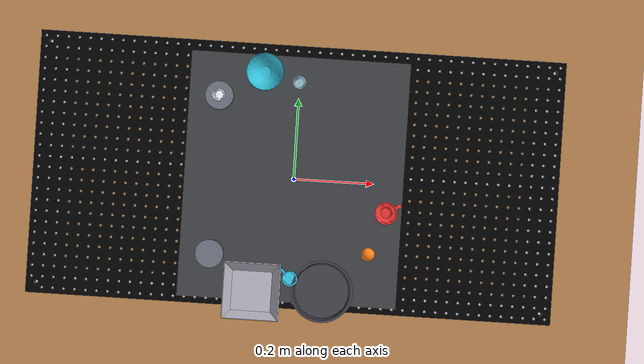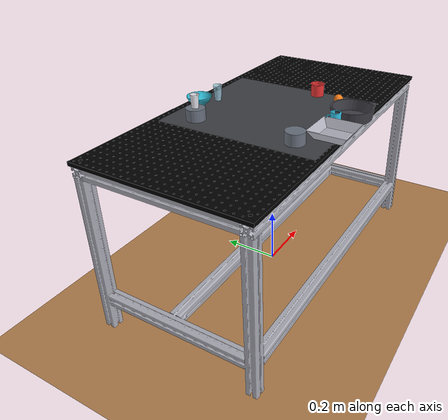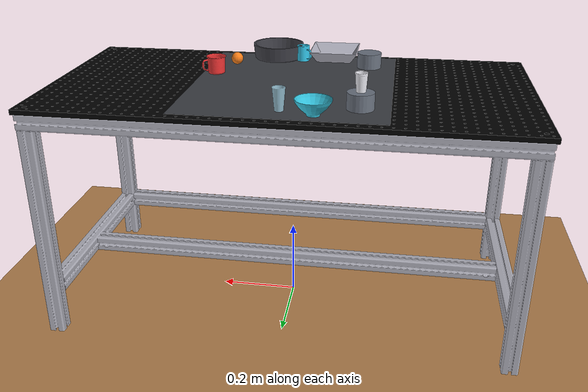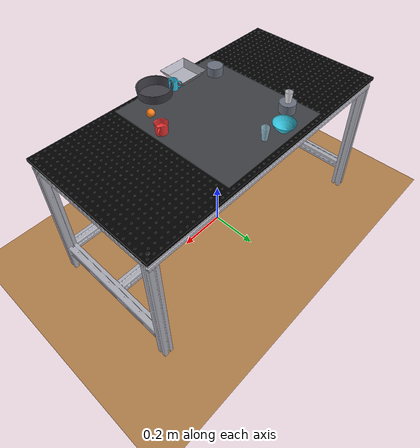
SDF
<sdf version="1.6">
 <world name="default">
  <physics type="ode">
   <max_step_size>0.001</max_step_size>
   <real_time_factor>1.0</real_time_factor>
   <real_time_update_rate>1000</real_time_update_rate>
   <ode>
    <solver><type>quick</type><iters>100</iters><sor>1.3</sor></solver>
    <constraints>
     <cfm>0.00001</cfm>
     <erp>0.2</erp>
     <contact_max_correcting_vel>10.0</contact_max_correcting_vel>
     <contact_surface_layer>0.001</contact_surface_layer>
    </constraints>
   </ode>
  </physics>
  <plugin name="gazebo_ros_state" filename="libgazebo_ros_state.so">
   <ros><namespace>/gazebo</namespace></ros>
   <update_rate>50.0</update_rate>
  </plugin>
  <gravity>0 0 -9.81</gravity>
  <scene>
   <ambient>0.70 0.70 0.72 1.0</ambient>
   <background>0.84 0.86 0.90 1.0</background>
   <shadows>true</shadows>
   <grid>false</grid>
  </scene>
  <light type="directional" name="sun">
   <pose>0.5 0.5 5.0 0 0 0</pose>
   <diffuse>0.92 0.92 0.90 1</diffuse>
   <specular>0.3 0.3 0.3 1</specular>
   <direction>-0.3 -0.3 -1.0</direction>
  </light>
  <light type="spot" name="table_spot">
   <pose>0.0 0.0 2.2 0 0 0</pose>
   <diffuse>0.92 0.90 0.85 1</diffuse>
   <specular>0.4 0.4 0.4 1</specular>
   <attenuation>
    <range>4.5</range>
    <constant>0.4</constant>
    <linear>0.05</linear>
    <quadratic>0.01</quadratic>
   </attenuation>
   <direction>0 0 -1</direction>
   <spot><inner_angle>1.2</inner_angle><outer_angle>1.8</outer_angle><falloff>1.0</falloff></spot>
   <cast_shadows>false</cast_shadows>
  </light>
  <light type="point" name="workspace_fill_light">
   <pose>0.0 0.0 1.8 0 0 0</pose>
   <diffuse>0.48 0.48 0.50 1</diffuse>
   <specular>0.1 0.1 0.1 1</specular>
   <attenuation>
    <range>3.5</range>
    <constant>0.6</constant>
    <linear>0.06</linear>
    <quadratic>0.01</quadratic>
   </attenuation>
   <cast_shadows>false</cast_shadows>
  </light>
  <model name="overhead_camera_model">
   <static>true</static>
   <pose>0.0 0.0 1.45 0 1.5708 0</pose>
   <link name="camera_link">
    <sensor name="top_camera" type="camera">
     <always_on>true</always_on>
     <update_rate>30</update_rate>
     <visualize>false</visualize>
     <camera>
      <horizontal_fov>1.25</horizontal_fov>
      <image><width>1920</width><height>1080</height><format>R8G8B8</format></image>
      <clip><near>0.01</near><far>10.0</far></clip>
     </camera>
     <plugin name="overhead_camera_driver" filename="libgazebo_ros_camera.so">
      <ros>
       <remapping>~/image_raw:=/top_camera/image_raw</remapping>
       <remapping>~/camera_info:=/top_camera/camera_info</remapping>
      </ros>
      <camera_name>top_camera</camera_name>
      <frame_name>top_camera_link</frame_name>
     </plugin>
    </sensor>
   </link>
  </model>
  <model name="side_inspection_rig">
   <static>true</static>
   <pose>0.52 -0.42 0.95 0 0.40 2.45</pose>
   <link name="link">
    <sensor name="side_camera" type="camera">
     <always_on>true</always_on>
     <update_rate>30</update_rate>
     <visualize>false</visualize>
     <camera>
      <horizontal_fov>1.15</horizontal_fov>
      <image><width>1920</width><height>1080</height><format>R8G8B8</format></image>
      <clip><near>0.01</near><far>10.0</far></clip>
     </camera>
     <plugin name="side_camera_driver" filename="libgazebo_ros_camera.so">
      <ros>
       <remapping>~/image_raw:=/side_camera/image_raw</remapping>
       <remapping>~/camera_info:=/side_camera/camera_info</remapping>
      </ros>
      <camera_name>side_camera</camera_name>
      <frame_name>side_camera_link</frame_name>
     </plugin>
    </sensor>
   </link>
  </model>
  <model name="ground_plane">
   <static>true</static>
   <link name="link">
    <collision name="collision">
     <geometry><plane><normal>0 0 1</normal><size>20 20</size></plane></geometry>
     <surface>
      <friction><ode><mu>100</mu><mu2>50</mu2></ode></friction>
      <bounce><restitution_coefficient>0.0</restitution_coefficient><threshold>1000000.0</threshold></bounce>
     </surface>
    </collision>
    <visual name="visual">
     <cast_shadows>false</cast_shadows>
     <geometry><plane><normal>0 0 1</normal><size>20 20</size></plane></geometry>
     <material>
      <script><uri>file://media/materials/scripts/gazebo.material</uri><name>Gazebo/WoodFloor</name></script>
     </material>
    </visual>
   </link>
  </model>
  <model name="optical_table">
   <static>true</static>
   <pose>0.60 0.30 0 0 0 0</pose>
   <link name="link">
    <collision name="collision">
     <pose>-0.60 -0.30 0.304 0 0 0</pose>
     <geometry><box><size>1.20 0.60 0.608</size></box></geometry>
     <surface>
      <friction><ode><mu>1.2</mu><mu2>1.2</mu2></ode></friction>
      <friction><ode><mu>1.5</mu><mu2>1.5</mu2><slip1>0.0</slip1><slip2>0.0</slip2></ode></friction>
      <contact>
       <ode><kp>1000000.0</kp><kd>1000.0</kd><max_vel>0.01</max_vel><min_depth>0.001</min_depth></ode>
      </contact>
      <bounce><restitution_coefficient>0.0</restitution_coefficient><threshold>1000000.0</threshold></bounce>
     </surface>
    </collision>
    <visual name="visual">
     <geometry>
      <mesh>
       <uri>file:///home/gaminizer/Projects/ARIA/install/arm_description/share/arm_description/meshes/table/complete_table.dae</uri>
      </mesh>
     </geometry>
    </visual>
   </link>
  </model>
  <model name="workspace_calibration_mat">
   <static>true</static>
   <pose>0.0 0.0 0.6081 0 0 0</pose>
   <link name="mat_link">
    <visual name="mat_visual">
     <geometry><box><size>0.50 0.56 0.0002</size></box></geometry>
     <material>
      <ambient>0.20 0.21 0.23 1</ambient>
      <diffuse>0.24 0.25 0.27 1</diffuse>
      <specular>0.1 0.1 0.1 1</specular>
     </material>
    </visual>
   </link>
  </model>
  <model name="elevated_pedestal_left">
   <static>true</static>
   <pose>-0.18 0.18 0.6281 0 0 0</pose>
   <link name="pedestal_link">
    <collision name="c">
     <geometry><cylinder><radius>0.032</radius><length>0.040</length></cylinder></geometry>
     <surface>
      <friction><ode><mu>1.2</mu><mu2>1.2</mu2></ode></friction>
      <contact><ode><kp>100000.0</kp><kd>100.0</kd><min_depth>0.001</min_depth></ode></contact>
      <bounce><restitution_coefficient>0.0</restitution_coefficient><threshold>1000000.0</threshold></bounce>
     </surface>
    </collision>
    <visual name="v">
     <geometry><cylinder><radius>0.032</radius><length>0.040</length></cylinder></geometry>
     <material>
      <ambient>0.35 0.38 0.42 1</ambient>
      <diffuse>0.42 0.45 0.50 1</diffuse>
      <specular>0.5 0.5 0.5 1</specular>
     </material>
    </visual>
   </link>
  </model>
  <model name="elevated_pedestal_right">
   <static>true</static>
   <pose>-0.18 -0.18 0.6281 0 0 0</pose>
   <link name="pedestal_link">
    <collision name="c">
     <geometry><cylinder><radius>0.032</radius><length>0.040</length></cylinder></geometry>
     <surface>
      <friction><ode><mu>1.2</mu><mu2>1.2</mu2></ode></friction>
      <contact><ode><kp>100000.0</kp><kd>100.0</kd><min_depth>0.001</min_depth></ode></contact>
      <bounce><restitution_coefficient>0.0</restitution_coefficient><threshold>1000000.0</threshold></bounce>
     </surface>
    </collision>
    <visual name="v">
     <geometry><cylinder><radius>0.032</radius><length>0.040</length></cylinder></geometry>
     <material>
      <ambient>0.35 0.38 0.42 1</ambient>
      <diffuse>0.42 0.45 0.50 1</diffuse>
      <specular>0.5 0.5 0.5 1</specular>
     </material>
    </visual>
   </link>
  </model>
  <model name="mug_ycb_front">
   <pose>0.22 -0.06 0.6081 0 0 0.6</pose>
   <link name="body">
    <inertial>
     <pose>0 0 0.0225 0 0 0</pose>
     <mass>0.22</mass>
     <inertia><ixx>0.0002</ixx><ixy>0</ixy><ixz>0</ixz><iyy>0.0002</iyy><iyz>0</iyz><izz>0.0002</izz></inertia>
    </inertial>
    <collision name="c">
     <pose>0 0 0.0225 0 0 0</pose>
     <geometry><cylinder><radius>0.018</radius><length>0.045</length></cylinder></geometry>
     <surface>
      <friction><ode><mu>1.2</mu><mu2>1.2</mu2></ode></friction>
      <contact>
       <ode><kp>50000.0</kp><kd>100.0</kd><max_vel>0.01</max_vel><min_depth>0.002</min_depth></ode>
      </contact>
      <bounce><restitution_coefficient>0.0</restitution_coefficient><threshold>1000000.0</threshold></bounce>
     </surface>
    </collision>
    <visual name="v">
     <geometry>
      <mesh>
       <uri>file:///home/gaminizer/Projects/ARIA/install/arm_description/share/arm_description/meshes/objects/ycb_mug/ycb_mug_norm.obj</uri>
      </mesh>
     </geometry>
     <material>
      <ambient>0.85 0.15 0.15 1</ambient>
      <diffuse>0.92 0.20 0.20 1</diffuse>
      <specular>0.6 0.6 0.6 1</specular>
     </material>
    </visual>
   </link>
  </model>
  <model name="plastic_glass">
   <pose>0.00 0.22 0.6081 0 0 0</pose>
   <link name="body">
    <inertial>
     <pose>0 0 0.0275 0 0 0</pose>
     <mass>0.15</mass>
     <inertia><ixx>0.00018</ixx><ixy>0</ixy><ixz>0</ixz><iyy>0.00018</iyy><iyz>0</iyz><izz>0.0001</izz></inertia>
    </inertial>
    <collision name="c">
     <pose>0 0 0.0275 0 0 0</pose>
     <geometry><cylinder><radius>0.016</radius><length>0.055</length></cylinder></geometry>
     <surface>
      <friction><ode><mu>1.2</mu><mu2>1.2</mu2></ode></friction>
      <contact>
       <ode><kp>50000.0</kp><kd>100.0</kd><max_vel>0.01</max_vel><min_depth>0.002</min_depth></ode>
      </contact>
      <bounce><restitution_coefficient>0.0</restitution_coefficient><threshold>1000000.0</threshold></bounce>
     </surface>
    </collision>
    <visual name="v">
     <geometry>
      <mesh>
       <uri>file:///home/gaminizer/Projects/ARIA/install/arm_description/share/arm_description/meshes/objects/plastic_glass_norm.obj</uri>
      </mesh>
     </geometry>
     <material>
      <ambient>0.6 0.85 0.95 0.8</ambient>
      <diffuse>0.7 0.90 0.98 0.8</diffuse>
      <specular>0.9 0.9 0.9 1</specular>
     </material>
    </visual>
   </link>
  </model>
  <model name="plastic_bowl">
   <pose>-0.08 0.24 0.6081 0 0 0</pose>
   <link name="body">
    <inertial>
     <pose>0 0 0.0190 0 0 0</pose>
     <mass>0.18</mass>
     <inertia><ixx>0.00025</ixx><ixy>0</ixy><ixz>0</ixz><iyy>0.00025</iyy><iyz>0</iyz><izz>0.0003</izz></inertia>
    </inertial>
    <collision name="c">
     <pose>0 0 0.019 0 0 0</pose>
     <geometry><cylinder><radius>0.050</radius><length>0.038</length></cylinder></geometry>
     <surface>
      <friction><ode><mu>1.2</mu><mu2>1.2</mu2></ode></friction>
      <contact>
       <ode><kp>50000.0</kp><kd>100.0</kd><max_vel>0.01</max_vel><min_depth>0.002</min_depth></ode>
      </contact>
      <bounce><restitution_coefficient>0.0</restitution_coefficient><threshold>1000000.0</threshold></bounce>
     </surface>
    </collision>
    <visual name="v">
     <geometry>
      <mesh>
       <uri>file:///home/gaminizer/Projects/ARIA/install/arm_description/share/arm_description/meshes/objects/plastic_bowl_norm.obj</uri>
      </mesh>
     </geometry>
     <material>
      <ambient>0.15 0.65 0.75 1</ambient>
      <diffuse>0.20 0.75 0.85 1</diffuse>
      <specular>0.5 0.5 0.5 1</specular>
     </material>
    </visual>
   </link>
  </model>
  <model name="ceramic_tea_mug">
   <pose>-0.18 0.18 0.6481 0 0 -1.5708</pose>
   <link name="body">
    <inertial>
     <pose>0 0 0.0210 0 0 0</pose>
     <mass>0.24</mass>
     <inertia><ixx>0.00025</ixx><ixy>0</ixy><ixz>0</ixz><iyy>0.00025</iyy><iyz>0</iyz><izz>0.00025</izz></inertia>
    </inertial>
    <collision name="c">
     <pose>0 0 0.0225 0 0 0</pose>
     <geometry><cylinder><radius>0.016</radius><length>0.045</length></cylinder></geometry>
     <surface>
      <friction><ode><mu>1.2</mu><mu2>1.2</mu2></ode></friction>
      <contact>
       <ode><kp>50000.0</kp><kd>100.0</kd><max_vel>0.01</max_vel><min_depth>0.002</min_depth></ode>
      </contact>
      <bounce><restitution_coefficient>0.0</restitution_coefficient><threshold>1000000.0</threshold></bounce>
     </surface>
    </collision>
    <visual name="v">
     <geometry>
      <mesh>
       <uri>file:///home/gaminizer/Projects/ARIA/install/arm_description/share/arm_description/meshes/bullet/tea_mug_norm.obj</uri>
      </mesh>
     </geometry>
     <material>
      <ambient>0.88 0.88 0.90 1</ambient>
      <diffuse>0.92 0.92 0.95 1</diffuse>
      <specular>0.7 0.7 0.7 1</specular>
     </material>
    </visual>
   </link>
  </model>
  <model name="tefal_pan">
   <pose>0.08 -0.25 0.6081 0 0 -0.5</pose>
   <link name="body">
    <inertial>
     <pose>0 0 0.0175 0 0 0</pose>
     <mass>0.35</mass>
     <inertia><ixx>0.0005</ixx><ixy>0</ixy><ixz>0</ixz><iyy>0.0005</iyy><iyz>0</iyz><izz>0.0008</izz></inertia>
    </inertial>
    <collision name="c">
     <pose>0 0 0.020 0 0 0</pose>
     <geometry><cylinder><radius>0.075</radius><length>0.040</length></cylinder></geometry>
     <surface>
      <friction><ode><mu>1.2</mu><mu2>1.2</mu2></ode></friction>
      <contact>
       <ode><kp>50000.0</kp><kd>100.0</kd><max_vel>0.01</max_vel><min_depth>0.002</min_depth></ode>
      </contact>
      <bounce><restitution_coefficient>0.0</restitution_coefficient><threshold>1000000.0</threshold></bounce>
     </surface>
    </collision>
    <visual name="v">
     <geometry>
      <mesh>
       <uri>file:///home/gaminizer/Projects/ARIA/install/arm_description/share/arm_description/meshes/bullet/pan_tefal_norm.obj</uri>
      </mesh>
     </geometry>
     <material>
      <ambient>0.2 0.2 0.22 1</ambient>
      <diffuse>0.25 0.25 0.28 1</diffuse>
      <specular>0.5 0.5 0.5 1</specular>
     </material>
    </visual>
   </link>
  </model>
  <model name="mug_bullet_right">
   <pose>0.00 -0.22 0.6081 0 0 0.8</pose>
   <link name="body">
    <inertial>
     <pose>0 0 0.0210 0 0 0</pose>
     <mass>0.25</mass>
     <inertia><ixx>0.00025</ixx><ixy>0</ixy><ixz>0</ixz><iyy>0.00025</iyy><iyz>0</iyz><izz>0.00025</izz></inertia>
    </inertial>
    <collision name="c">
     <pose>0 0 0.021 0 0 0</pose>
     <geometry><cylinder><radius>0.018</radius><length>0.042</length></cylinder></geometry>
     <surface>
      <friction><ode><mu>1.2</mu><mu2>1.2</mu2></ode></friction>
      <contact>
       <ode><kp>50000.0</kp><kd>100.0</kd><max_vel>0.01</max_vel><min_depth>0.002</min_depth></ode>
      </contact>
      <bounce><restitution_coefficient>0.0</restitution_coefficient><threshold>1000000.0</threshold></bounce>
     </surface>
    </collision>
    <visual name="v">
     <geometry>
      <mesh>
       <uri>file:///home/gaminizer/Projects/ARIA/install/arm_description/share/arm_description/meshes/bullet/bullet_mug_norm.obj</uri>
      </mesh>
     </geometry>
     <material>
      <ambient>0.15 0.70 0.85 1</ambient>
      <diffuse>0.20 0.78 0.92 1</diffuse>
      <specular>0.5 0.5 0.5 1</specular>
     </material>
    </visual>
   </link>
  </model>
  <model name="sorting_tray">
   <pose>-0.08 -0.26 0.6081 0 0 0</pose>
   <link name="body">
    <inertial>
     <pose>0 0 0.0175 0 0 0</pose>
     <mass>0.28</mass>
     <inertia><ixx>0.0004</ixx><ixy>0</ixy><ixz>0</ixz><iyy>0.0004</iyy><iyz>0</iyz><izz>0.0006</izz></inertia>
    </inertial>
    <collision name="c">
     <pose>0 0 0.015 0 0 0</pose>
     <geometry><box><size>0.15 0.15 0.030</size></box></geometry>
     <surface>
      <friction><ode><mu>1.2</mu><mu2>1.2</mu2></ode></friction>
      <contact>
       <ode><kp>50000.0</kp><kd>100.0</kd><max_vel>0.01</max_vel><min_depth>0.002</min_depth></ode>
      </contact>
      <bounce><restitution_coefficient>0.0</restitution_coefficient><threshold>1000000.0</threshold></bounce>
     </surface>
    </collision>
    <visual name="v">
     <geometry>
      <mesh>
       <uri>file:///home/gaminizer/Projects/ARIA/install/arm_description/share/arm_description/meshes/bullet/tray_norm.obj</uri>
      </mesh>
     </geometry>
     <material>
      <ambient>0.6 0.6 0.65 1</ambient>
      <diffuse>0.7 0.7 0.75 1</diffuse>
      <specular>0.4 0.4 0.4 1</specular>
     </material>
    </visual>
   </link>
  </model>
  <model name="orange_fruit">
   <pose>0.18 -0.16 0.6081 0 0 0</pose>
   <link name="body">
    <inertial>
     <pose>0 0 0.0180 0 0 0</pose>
     <mass>0.18</mass>
     <inertia><ixx>0.00015</ixx><ixy>0</ixy><ixz>0</ixz><iyy>0.00015</iyy><iyz>0</iyz><izz>0.00015</izz></inertia>
    </inertial>
    <collision name="c">
     <pose>0 0 0.016 0 0 0</pose>
     <geometry><sphere><radius>0.016</radius></sphere></geometry>
     <surface>
      <friction><ode><mu>1.2</mu><mu2>1.2</mu2></ode></friction>
      <contact>
       <ode><kp>50000.0</kp><kd>100.0</kd><max_vel>0.01</max_vel><min_depth>0.002</min_depth></ode>
      </contact>
      <bounce><restitution_coefficient>0.0</restitution_coefficient><threshold>1000000.0</threshold></bounce>
     </surface>
    </collision>
    <visual name="v">
     <pose>0 0 0.016 0 0 0</pose>
     <geometry><sphere><radius>0.016</radius></sphere></geometry>
     <material>
      <ambient>0.95 0.45 0.05 1</ambient>
      <diffuse>0.98 0.50 0.10 1</diffuse>
      <specular>0.4 0.4 0.3 1</specular>
     </material>
    </visual>
   </link>
  </model>
 </world>
</sdf>
